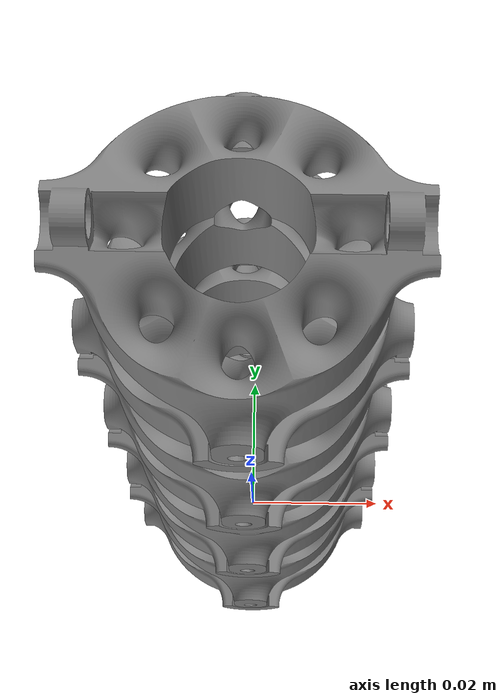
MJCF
<mujoco model="30mm_one_segment">
    <!--eulerseq="xyz"→ euler="a b c" 같은 오일러 각을 x → y → z 순서로, 축이 매 단계 회전과 함께 따라가는 “내재(intrinsic)” 방식으로 적용한다는 뜻, 소문자 = intrinsic / 대문자 = extrinsic-->

    <asset>
        <mesh name="mesh_component2" file="meshes/mesh_component2.stl" scale="0.001 0.001 0.001" /> <!-- The mesh file for the component -->
    </asset>

    <worldbody>

        <body name="comp_root" pos="0 0 0" quat="1 0 0 0">
            <geom name="geom_comp_root" type="mesh" mesh="mesh_component2" pos="0 0 0"/>
            <inertial mass="0.034962578305385045" pos="-7.472585541467528e-08 7.901881324749933e-09 0.00013813391178014084" fullinertia="3.055182113221844e-06 2.848652002682884e-06 5.213750324900917e-06 -4.694970745810055e-12 -1.2612174129223041e-11 1.8838018378797825e-12" />

            <body name="comp_1" pos="0 0 0.015" quat="0.70710678 0 0 -0.70710678">
                <joint name="rotation_1" type="hinge" axis="1 0 0" pos="0.01794 0 -0.0075" /> <!--joint axis: 이 조인트가 어느 방향으로 움직이는지, pos: 조인트의 앵커(회전/이동이 일어나는 점) 위치-->
                <geom name="geom_comp_1" type="mesh" mesh="mesh_component2" pos="0 0 0" quat="1 0 0 0"/>
                <inertial mass="0.034962578305385045" pos="-7.472585541454448e-08 7.901881324746635e-09 0.00013813391178014496" fullinertia="3.0551821132218284e-06 2.8486520026829268e-06 5.213750324900907e-06 -4.694970745810085e-12 -1.2612174121400085e-11 1.8838018376833885e-12" />

                <body name="comp_2" pos="0 0 0.015" quat="0.70710678 0 0 0.70710678">
                    <joint name="rotation_2" type="hinge" axis="1 0 0" pos="0.01794 0 -0.0075" />
                    <geom name="geom_comp_2" type="mesh" mesh="mesh_component2" pos="0 0 0" quat="1 0 0 0"/>
                    <inertial mass="0.034962578305385045" pos="-7.472585541454448e-08 7.901881324746635e-09 0.00013813391178014273" fullinertia="3.0551821132218267e-06 2.84865200268293e-06 5.213750324900907e-06 -4.694970745810085e-12 -1.2612174121400085e-11 1.8838018376833877e-12" />

                    <body name="comp_3" pos="0 0 0.015" quat="0.70710678 0 0 -0.70710678">
                        <joint name="rotation_3" type="hinge" axis="1 0 0" pos="0.01794 0 -0.0075" />
                        <geom name="geom_comp_3" type="mesh" mesh="mesh_component2" pos="0 0 0" quat="1 0 0 0"/>
                        <inertial mass="0.034962578305385045" pos="-7.47258554145445e-08 7.901881324746637e-09 0.00013813391178014273" fullinertia="3.0551821132218403e-06 2.84865200268293e-06 5.213750324900907e-06 -4.694970745810085e-12 -1.2612174121400085e-11 1.883801837683387e-12" />

                        <body name="comp_4" pos="0 0 0.015" quat="0.70710678 0 0 0.70710678">
                            <joint name="rotation_4" type="hinge" axis="1 0 0" pos="0.01794 0 -0.0075" />
                            <geom name="geom_comp_4" type="mesh" mesh="mesh_component2" pos="0 0 0" quat="1 0 0 0"/>
                            <inertial mass="0.034962578305385045" pos="-7.472585541454448e-08 7.901881324015413e-09 0.00013813391178015038" fullinertia="3.055182113221813e-06 2.8486520026828874e-06 5.213750324900898e-06 -4.69497074581008e-12 -1.2612174121400061e-11 1.8838018335764905e-12" />

                            <body name="comp_5" pos="0 0 0.015" quat="0.70710678 0 0 -0.70710678">
                                <joint name="rotation_5" type="hinge" axis="1 0 0" pos="0.01794 0 -0.0075" />
                                <geom name="geom_comp_5" type="mesh" mesh="mesh_component2" pos="0 0 0" quat="1 0 0 0"/>
                                <inertial mass="0.034962578305385045" pos="-7.472585541496629e-08 7.901881324746634e-09 0.0001381339117801356" fullinertia="3.0551821132218623e-06 2.8486520026829437e-06 5.213750324900904e-06 -4.694970745810083e-12 -1.261217412324965e-11 1.883801837683382e-12" />

                                <body name="comp_6" pos="0 0 0.015" quat="0.70710678 0 0 0.70710678">
                                    <joint name="rotation_6" type="hinge" axis="1 0 0" pos="0.01794 0 -0.0075" />
                                    <geom name="geom_comp_6" type="mesh" mesh="mesh_component2" pos="0 0 0" quat="1 0 0 0"/>
                                    <inertial mass="0.034962578305385045" pos="-7.472585541454451e-08 7.901881323397079e-09 0.00013813391178015924" fullinertia="3.0551821132217047e-06 2.8486520026828886e-06 5.213750324900898e-06 -4.6949707458100755e-12 -1.261217412140013e-11 1.883801832570639e-12" />

                                    <body name="comp_7" pos="0 0 0.015" quat="0.70710678 0 0 -0.70710678">
                                        <joint name="rotation_7" type="hinge" axis="1 0 0" pos="0.01794 0 -0.0075" />
                                        <geom name="geom_comp_7" type="mesh" mesh="mesh_component2" pos="0 0 0" quat="1 0 0 0"/>
                                        <inertial mass="0.034962578305385045" pos="-7.472585541316211e-08 7.901881324746632e-09 0.00013813391178015339" fullinertia="3.0551821132217585e-06 2.8486520026828353e-06 5.213750324900921e-06 -4.6949707458100884e-12 -1.2612174111020612e-11 1.883801837683386e-12" />
                                    </body>
                                </body>
                            </body>
                        </body>
                    </body>
                </body>
            </body>
        </body>
    </worldbody>

</mujoco>
